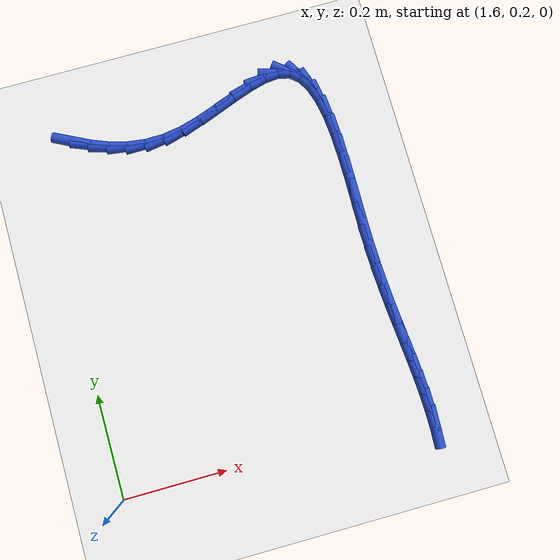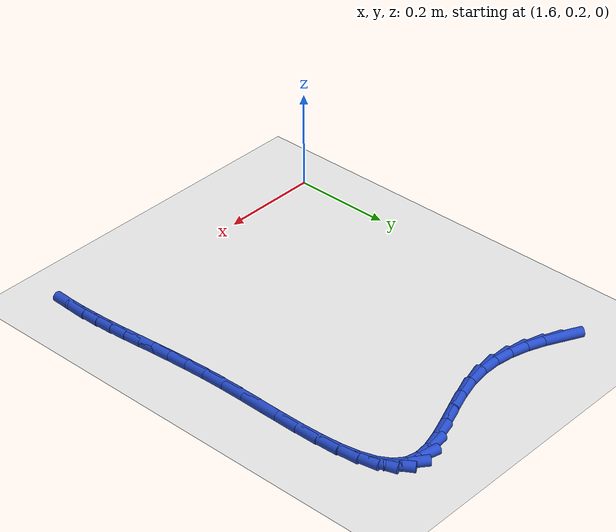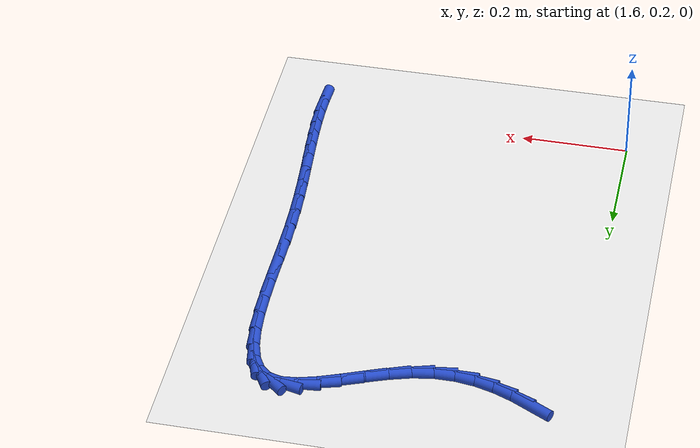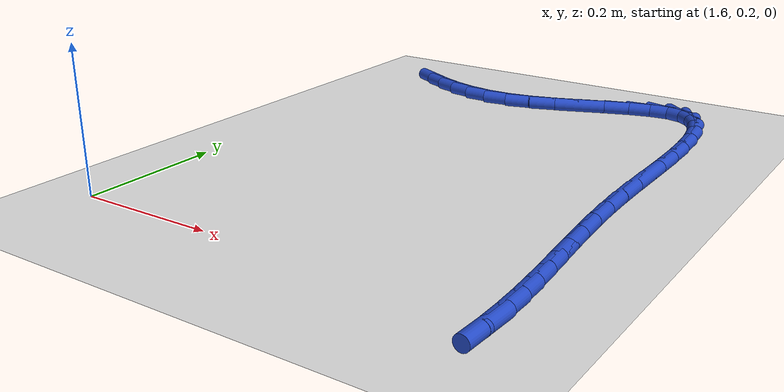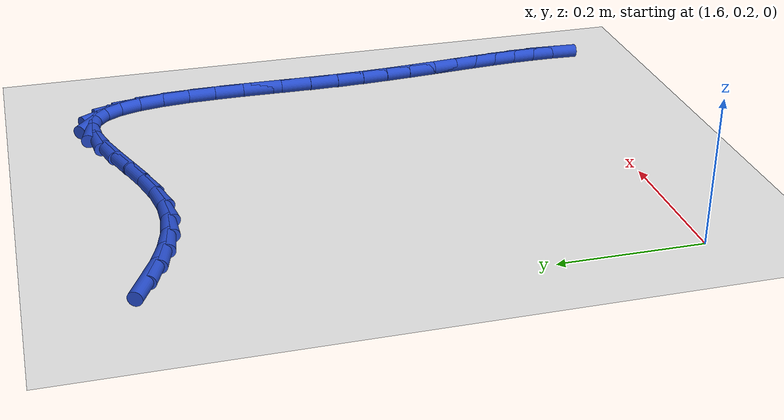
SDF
<sdf version="1.6">
 <world name="default">
  <model name="ground_plane">
   <static>1</static>
   <link name="link">
    <collision name="collision">
     <geometry><plane><normal>0 0 1</normal><size>100 100</size></plane></geometry>
     <surface><friction><ode><mu>100</mu><mu2>50</mu2></ode></friction></surface>
    </collision>
    <visual name="visual">
     <cast_shadows>0</cast_shadows>
     <geometry><plane><normal>0 0 1</normal><size>100 100</size></plane></geometry>
     <material>
      <script><uri>file://media/materials/scripts/gazebo.material</uri><name>Gazebo/WhiteGlow</name></script>
     </material>
    </visual>
   </link>
  </model>
  <model name="line">
   <link name="link_67">
    <pose>1.6727227927690174 0.8911602631555552 0.01 0 1.57 -0.46406686643149403</pose>
    <collision name="collision">
     <geometry><cylinder><radius>0.01</radius><length>0.08</length></cylinder></geometry>
    </collision>
    <visual name="visual">
     <material>
      <script><name>Gazebo/Blue</name><uri>file://media/materials/scripts/gazebo.material</uri></script>
     </material>
     <geometry><cylinder><radius>0.01</radius><length>0.08</length></cylinder></geometry>
    </visual>
   </link>
   <link name="link_68">
    <pose>1.705675314377666 0.8746667292423488 0.01 0 1.57 -0.37435483556211635</pose>
    <collision name="collision">
     <geometry><cylinder><radius>0.01</radius><length>0.08</length></cylinder></geometry>
    </collision>
    <visual name="visual">
     <material>
      <script><name>Gazebo/Blue</name><uri>file://media/materials/scripts/gazebo.material</uri></script>
     </material>
     <geometry><cylinder><radius>0.01</radius><length>0.08</length></cylinder></geometry>
    </visual>
   </link>
   <link name="link_69">
    <pose>1.7394110522062012 0.8614125773195529 0.01 0 1.57 -0.2642600711767</pose>
    <collision name="collision">
     <geometry><cylinder><radius>0.01</radius><length>0.08</length></cylinder></geometry>
    </collision>
    <visual name="visual">
     <material>
      <script><name>Gazebo/Blue</name><uri>file://media/materials/scripts/gazebo.material</uri></script>
     </material>
     <geometry><cylinder><radius>0.01</radius><length>0.08</length></cylinder></geometry>
    </visual>
   </link>
   <link name="link_70">
    <pose>1.7740749450301445 0.8520329338248022 0.01 0 1.57 -0.1354393425472786</pose>
    <collision name="collision">
     <geometry><cylinder><radius>0.01</radius><length>0.08</length></cylinder></geometry>
    </collision>
    <visual name="visual">
     <material>
      <script><name>Gazebo/Blue</name><uri>file://media/materials/scripts/gazebo.material</uri></script>
     </material>
     <geometry><cylinder><radius>0.01</radius><length>0.08</length></cylinder></geometry>
    </visual>
   </link>
   <link name="link_71">
    <pose>1.8098119316250165 0.8471629251957311 0.01 0 1.57 0.007434649430058432</pose>
    <collision name="collision">
     <geometry><cylinder><radius>0.01</radius><length>0.08</length></cylinder></geometry>
    </collision>
    <visual name="visual">
     <material>
      <script><name>Gazebo/Blue</name><uri>file://media/materials/scripts/gazebo.material</uri></script>
     </material>
     <geometry><cylinder><radius>0.01</radius><length>0.08</length></cylinder></geometry>
    </visual>
   </link>
   <link name="link_72">
    <pose>1.8467669507663393 0.8474376778699741 0.01 0 1.57 0.1558963586968412</pose>
    <collision name="collision">
     <geometry><cylinder><radius>0.01</radius><length>0.08</length></cylinder></geometry>
    </collision>
    <visual name="visual">
     <material>
      <script><name>Gazebo/Blue</name><uri>file://media/materials/scripts/gazebo.material</uri></script>
     </material>
     <geometry><cylinder><radius>0.01</radius><length>0.08</length></cylinder></geometry>
    </visual>
   </link>
   <link name="link_73">
    <pose>1.8850712559053295 0.8534580310045085 0.01 0 1.57 0.2759679046431737</pose>
    <collision name="collision">
     <geometry><cylinder><radius>0.01</radius><length>0.08</length></cylinder></geometry>
    </collision>
    <visual name="visual">
     <material>
      <script><name>Gazebo/Blue</name><uri>file://media/materials/scripts/gazebo.material</uri></script>
     </material>
     <geometry><cylinder><radius>0.01</radius><length>0.08</length></cylinder></geometry>
    </visual>
   </link>
   <link name="link_74">
    <pose>1.9243611119427555 0.8645846769410488 0.01 0 1.57 0.3430791928492612</pose>
    <collision name="collision">
     <geometry><cylinder><radius>0.01</radius><length>0.08</length></cylinder></geometry>
    </collision>
    <visual name="visual">
     <material>
      <script><name>Gazebo/Blue</name><uri>file://media/materials/scripts/gazebo.material</uri></script>
     </material>
     <geometry><cylinder><radius>0.01</radius><length>0.08</length></cylinder></geometry>
    </visual>
   </link>
   <link name="link_75">
    <pose>1.9636504133811656 0.8786190180810297 0.01 0 1.57 0.3655269714927042</pose>
    <collision name="collision">
     <geometry><cylinder><radius>0.01</radius><length>0.08</length></cylinder></geometry>
    </collision>
    <visual name="visual">
     <material>
      <script><name>Gazebo/Blue</name><uri>file://media/materials/scripts/gazebo.material</uri></script>
     </material>
     <geometry><cylinder><radius>0.01</radius><length>0.08</length></cylinder></geometry>
    </visual>
   </link>
   <link name="link_76">
    <pose>2.0019134734861965 0.893263289794938 0.01 0 1.57 0.34360894084114635</pose>
    <collision name="collision">
     <geometry><cylinder><radius>0.01</radius><length>0.08</length></cylinder></geometry>
    </collision>
    <visual name="visual">
     <material>
      <script><name>Gazebo/Blue</name><uri>file://media/materials/scripts/gazebo.material</uri></script>
     </material>
     <geometry><cylinder><radius>0.01</radius><length>0.08</length></cylinder></geometry>
    </visual>
   </link>
   <link name="link_77">
    <pose>2.038124605523482 0.9062197274532594 0.01 0 1.57 0.2644090322370107</pose>
    <collision name="collision">
     <geometry><cylinder><radius>0.01</radius><length>0.08</length></cylinder></geometry>
    </collision>
    <visual name="visual">
     <material>
      <script><name>Gazebo/Blue</name><uri>file://media/materials/scripts/gazebo.material</uri></script>
     </material>
     <geometry><cylinder><radius>0.01</radius><length>0.08</length></cylinder></geometry>
    </visual>
   </link>
   <link name="link_78">
    <pose>2.0712581227586577 0.9151905664264811 0.01 0 1.57 0.09231200915744743</pose>
    <collision name="collision">
     <geometry><cylinder><radius>0.01</radius><length>0.08</length></cylinder></geometry>
    </collision>
    <visual name="visual">
     <material>
      <script><name>Gazebo/Blue</name><uri>file://media/materials/scripts/gazebo.material</uri></script>
     </material>
     <geometry><cylinder><radius>0.01</radius><length>0.08</length></cylinder></geometry>
    </visual>
   </link>
   <link name="link_79">
    <pose>2.10028833845736 0.9178780420850896 0.01 0 1.57 -0.23932354117319063</pose>
    <collision name="collision">
     <geometry><cylinder><radius>0.01</radius><length>0.08</length></cylinder></geometry>
    </collision>
    <visual name="visual">
     <material>
      <script><name>Gazebo/Blue</name><uri>file://media/materials/scripts/gazebo.material</uri></script>
     </material>
     <geometry><cylinder><radius>0.01</radius><length>0.08</length></cylinder></geometry>
    </visual>
   </link>
   <link name="link_80">
    <pose>2.124216322068684 0.9120396176287598 0.01 0 1.57 -0.6800317864324226</pose>
    <collision name="collision">
     <geometry><cylinder><radius>0.01</radius><length>0.08</length></cylinder></geometry>
    </collision>
    <visual name="visual">
     <material>
      <script><name>Gazebo/Blue</name><uri>file://media/materials/scripts/gazebo.material</uri></script>
     </material>
     <geometry><cylinder><radius>0.01</radius><length>0.08</length></cylinder></geometry>
    </visual>
   </link>
   <link name="link_81">
    <pose>2.1428054797203564 0.8970063065332665 0.01 0 1.57 -1.030774208055247</pose>
    <collision name="collision">
     <geometry><cylinder><radius>0.01</radius><length>0.08</length></cylinder></geometry>
    </collision>
    <visual name="visual">
     <material>
      <script><name>Gazebo/Blue</name><uri>file://media/materials/scripts/gazebo.material</uri></script>
     </material>
     <geometry><cylinder><radius>0.01</radius><length>0.08</length></cylinder></geometry>
    </visual>
   </link>
   <link name="link_82">
    <pose>2.156673405549451 0.8738722642241663 0.01 0 1.57 -1.2552372053446037</pose>
    <collision name="collision">
     <geometry><cylinder><radius>0.01</radius><length>0.08</length></cylinder></geometry>
    </collision>
    <visual name="visual">
     <material>
      <script><name>Gazebo/Blue</name><uri>file://media/materials/scripts/gazebo.material</uri></script>
     </material>
     <geometry><cylinder><radius>0.01</radius><length>0.08</length></cylinder></geometry>
    </visual>
   </link>
   <link name="link_83">
    <pose>2.166482894703999 0.8438249461941214 0.01 0 1.57 -1.3933889796489545</pose>
    <collision name="collision">
     <geometry><cylinder><radius>0.01</radius><length>0.08</length></cylinder></geometry>
    </collision>
    <visual name="visual">
     <material>
      <script><name>Gazebo/Blue</name><uri>file://media/materials/scripts/gazebo.material</uri></script>
     </material>
     <geometry><cylinder><radius>0.01</radius><length>0.08</length></cylinder></geometry>
    </visual>
   </link>
   <link name="link_84">
    <pose>2.172896742332034 0.8080518079357941 0.01 0 1.57 -1.4797349461551859</pose>
    <collision name="collision">
     <geometry><cylinder><radius>0.01</radius><length>0.08</length></cylinder></geometry>
    </collision>
    <visual name="visual">
     <material>
      <script><name>Gazebo/Blue</name><uri>file://media/materials/scripts/gazebo.material</uri></script>
     </material>
     <geometry><cylinder><radius>0.01</radius><length>0.08</length></cylinder></geometry>
    </visual>
   </link>
   <link name="link_85">
    <pose>2.1765777435815865 0.7677403049418462 0.01 0 1.57 -1.5339174750240627</pose>
    <collision name="collision">
     <geometry><cylinder><radius>0.01</radius><length>0.08</length></cylinder></geometry>
    </collision>
    <visual name="visual">
     <material>
      <script><name>Gazebo/Blue</name><uri>file://media/materials/scripts/gazebo.material</uri></script>
     </material>
     <geometry><cylinder><radius>0.01</radius><length>0.08</length></cylinder></geometry>
    </visual>
   </link>
   <link name="link_86">
    <pose>2.17818869360069 0.72407789270494 0.01 0 1.57 -1.5663514005330446</pose>
    <collision name="collision">
     <geometry><cylinder><radius>0.01</radius><length>0.08</length></cylinder></geometry>
    </collision>
    <visual name="visual">
     <material>
      <script><name>Gazebo/Blue</name><uri>file://media/materials/scripts/gazebo.material</uri></script>
     </material>
     <geometry><cylinder><radius>0.01</radius><length>0.08</length></cylinder></geometry>
    </visual>
   </link>
   <link name="link_87">
    <pose>2.1783923875373756 0.6782520267177381 0.01 0 1.57 1.5592424508219602</pose>
    <collision name="collision">
     <geometry><cylinder><radius>0.01</radius><length>0.08</length></cylinder></geometry>
    </collision>
    <visual name="visual">
     <material>
      <script><name>Gazebo/Blue</name><uri>file://media/materials/scripts/gazebo.material</uri></script>
     </material>
     <geometry><cylinder><radius>0.01</radius><length>0.08</length></cylinder></geometry>
    </visual>
   </link>
   <link name="link_88">
    <pose>2.177851620539676 0.631450162472902 0.01 0 1.57 1.5574374446308976</pose>
    <collision name="collision">
     <geometry><cylinder><radius>0.01</radius><length>0.08</length></cylinder></geometry>
    </collision>
    <visual name="visual">
     <material>
      <script><name>Gazebo/Blue</name><uri>file://media/materials/scripts/gazebo.material</uri></script>
     </material>
     <geometry><cylinder><radius>0.01</radius><length>0.08</length></cylinder></geometry>
    </visual>
   </link>
   <link name="link_89">
    <pose>2.1772291877556227 0.5848597554630942 0.01 0 1.57 1.5698817878354212</pose>
    <collision name="collision">
     <geometry><cylinder><radius>0.01</radius><length>0.08</length></cylinder></geometry>
    </collision>
    <visual name="visual">
     <material>
      <script><name>Gazebo/Blue</name><uri>file://media/materials/scripts/gazebo.material</uri></script>
     </material>
     <geometry><cylinder><radius>0.01</radius><length>0.08</length></cylinder></geometry>
    </visual>
   </link>
   <link name="link_90">
    <pose>2.1771878583239332 0.5396682196199862 0.01 0 1.57 -1.546995582068387</pose>
    <collision name="collision">
     <geometry><cylinder><radius>0.01</radius><length>0.08</length></cylinder></geometry>
    </collision>
    <visual name="visual">
     <material>
      <script><name>Gazebo/Blue</name><uri>file://media/materials/scripts/gazebo.material</uri></script>
     </material>
     <geometry><cylinder><radius>0.01</radius><length>0.08</length></cylinder></geometry>
    </visual>
   </link>
   <link name="link_91">
    <pose>2.178208987355487 0.49677308246522245 0.01 0 1.57 -1.5229092618886657</pose>
    <collision name="collision">
     <geometry><cylinder><radius>0.01</radius><length>0.08</length></cylinder></geometry>
    </collision>
    <visual name="visual">
     <material>
      <script><name>Gazebo/Blue</name><uri>file://media/materials/scripts/gazebo.material</uri></script>
     </material>
     <geometry><cylinder><radius>0.01</radius><length>0.08</length></cylinder></geometry>
    </visual>
   </link>
   <link name="link_92">
    <pose>2.1801587277142223 0.45608882311494475 0.01 0 1.57 -1.5034642239879699</pose>
    <collision name="collision">
     <geometry><cylinder><radius>0.01</radius><length>0.08</length></cylinder></geometry>
    </collision>
    <visual name="visual">
     <material>
      <script><name>Gazebo/Blue</name><uri>file://media/materials/scripts/gazebo.material</uri></script>
     </material>
     <geometry><cylinder><radius>0.01</radius><length>0.08</length></cylinder></geometry>
    </visual>
   </link>
   <link name="link_93">
    <pose>2.1827729489310514 0.4173217374033953 0.01 0 1.57 -1.4898139393456726</pose>
    <collision name="collision">
     <geometry><cylinder><radius>0.01</radius><length>0.08</length></cylinder></geometry>
    </collision>
    <visual name="visual">
     <material>
      <script><name>Gazebo/Blue</name><uri>file://media/materials/scripts/gazebo.material</uri></script>
     </material>
     <geometry><cylinder><radius>0.01</radius><length>0.08</length></cylinder></geometry>
    </visual>
   </link>
   <link name="link_94">
    <pose>2.185787520536885 0.3801781211648152 0.01 0 1.57 -1.4830453585609036</pose>
    <collision name="collision">
     <geometry><cylinder><radius>0.01</radius><length>0.08</length></cylinder></geometry>
    </collision>
    <visual name="visual">
     <material>
      <script><name>Gazebo/Blue</name><uri>file://media/materials/scripts/gazebo.material</uri></script>
     </material>
     <geometry><cylinder><radius>0.01</radius><length>0.08</length></cylinder></geometry>
    </visual>
   </link>
   <link name="link_95">
    <pose>2.1889383120626325 0.3443642702334458 0.01 0 1.57 -1.484094364652157</pose>
    <collision name="collision">
     <geometry><cylinder><radius>0.01</radius><length>0.08</length></cylinder></geometry>
    </collision>
    <visual name="visual">
     <material>
      <script><name>Gazebo/Blue</name><uri>file://media/materials/scripts/gazebo.material</uri></script>
     </material>
     <geometry><cylinder><radius>0.01</radius><length>0.08</length></cylinder></geometry>
    </visual>
   </link>
   <link name="link_96">
    <pose>2.1919611930392042 0.3095864804435289 0.01 0 1.57 -1.4936526318654821</pose>
    <collision name="collision">
     <geometry><cylinder><radius>0.01</radius><length>0.08</length></cylinder></geometry>
    </collision>
    <visual name="visual">
     <material>
      <script><name>Gazebo/Blue</name><uri>file://media/materials/scripts/gazebo.material</uri></script>
     </material>
     <geometry><cylinder><radius>0.01</radius><length>0.08</length></cylinder></geometry>
    </visual>
   </link>
   <link name="link_97">
    <pose>2.1945920329975106 0.27555104762930527 0.01 0 1.57 -1.5120709011474391</pose>
    <collision name="collision">
     <geometry><cylinder><radius>0.01</radius><length>0.08</length></cylinder></geometry>
    </collision>
    <visual name="visual">
     <material>
      <script><name>Gazebo/Blue</name><uri>file://media/materials/scripts/gazebo.material</uri></script>
     </material>
     <geometry><cylinder><radius>0.01</radius><length>0.08</length></cylinder></geometry>
    </visual>
   </link>
   <link name="link_98">
    <pose>2.196566701468463 0.24196426762501672 0.01 0 1.57 -1.5392689736454284</pose>
    <collision name="collision">
     <geometry><cylinder><radius>0.01</radius><length>0.08</length></cylinder></geometry>
    </collision>
    <visual name="visual">
     <material>
      <script><name>Gazebo/Blue</name><uri>file://media/materials/scripts/gazebo.material</uri></script>
     </material>
     <geometry><cylinder><radius>0.01</radius><length>0.08</length></cylinder></geometry>
    </visual>
   </link>
   <link name="link_99">
    <pose>2.1976210679829706 0.20853243626490453 0.01 0 1.57 1.566921945310758</pose>
    <collision name="collision">
     <geometry><cylinder><radius>0.01</radius><length>0.08</length></cylinder></geometry>
    </collision>
    <visual name="visual">
     <material>
      <script><name>Gazebo/Blue</name><uri>file://media/materials/scripts/gazebo.material</uri></script>
     </material>
     <geometry><cylinder><radius>0.01</radius><length>0.08</length></cylinder></geometry>
    </visual>
   </link>
   <link name="link_100">
    <pose>2.1974910020719447 0.17496184938321027 0.01 0 1.57 1.5246575818818129</pose>
    <collision name="collision">
     <geometry><cylinder><radius>0.01</radius><length>0.08</length></cylinder></geometry>
    </collision>
    <visual name="visual">
     <material>
      <script><name>Gazebo/Blue</name><uri>file://media/materials/scripts/gazebo.material</uri></script>
     </material>
     <geometry><cylinder><radius>0.01</radius><length>0.08</length></cylinder></geometry>
    </visual>
   </link>
  </model>
 </world>
</sdf>
